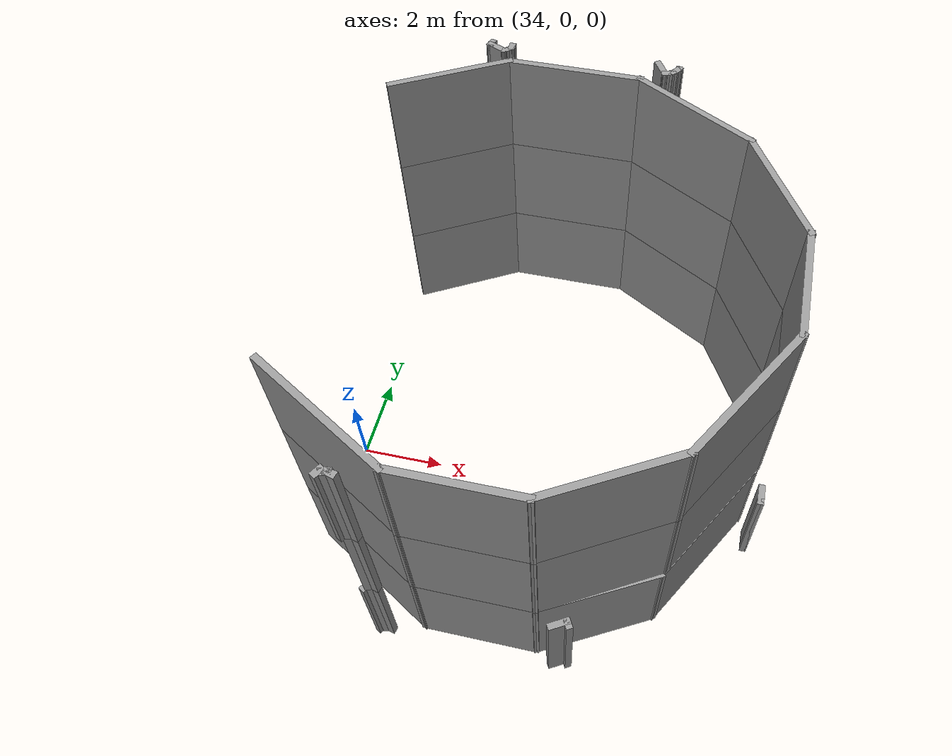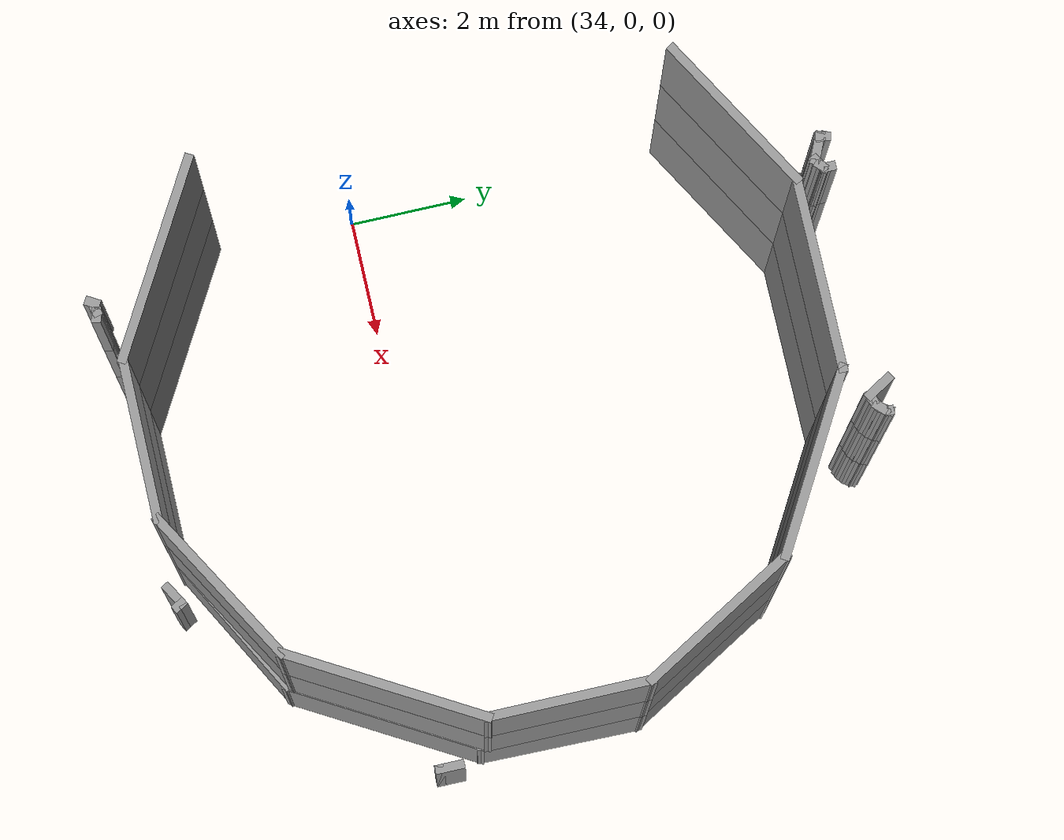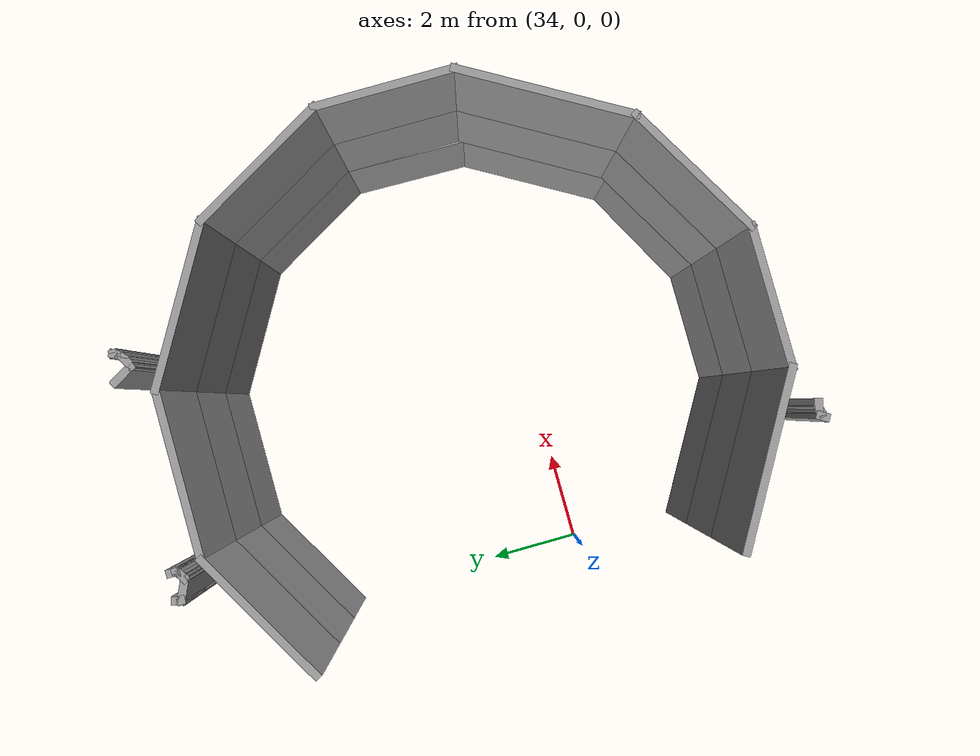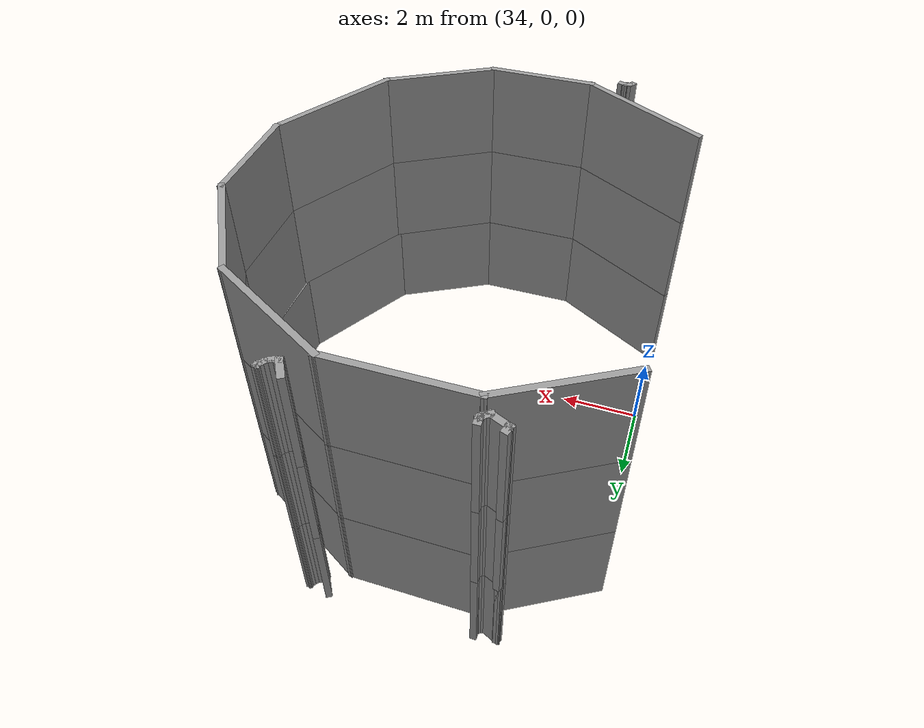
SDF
<sdf version="1.7">
 <model name="mapagazebo">
  <pose>-4.67869 9.01252 0 0 -0 0</pose>
  <link name="Wall_1289">
   <collision name="Wall_1289_Collision">
    <geometry><box><size>3.5 0.15 2.5</size></box></geometry>
    <pose>0 0 1.25 0 -0 0</pose>
   </collision>
   <visual name="Wall_1289_Visual">
    <pose>0 0 1.25 0 -0 0</pose>
    <geometry><box><size>3.5 0.15 2.5</size></box></geometry>
    <material>
     <script><uri>file://media/materials/scripts/gazebo.material</uri><name>Gazebo/Grey</name></script>
     <ambient>1 1 1 1</ambient>
    </material>
    <meta><layer>1</layer></meta>
   </visual>
   <pose>40.0905 -12.2721 2.5 0 -0 -0.523599</pose>
  </link>
  <link name="Wall_1290">
   <collision name="Wall_1290_Collision">
    <geometry><box><size>2.75 0.15 2.5</size></box></geometry>
    <pose>0 0 1.25 0 -0 0</pose>
   </collision>
   <visual name="Wall_1290_Visual">
    <pose>0 0 1.25 0 -0 0</pose>
    <geometry><box><size>2.75 0.15 2.5</size></box></geometry>
    <material>
     <script><uri>file://media/materials/scripts/gazebo.material</uri><name>Gazebo/Grey</name></script>
     <ambient>1 1 1 1</ambient>
    </material>
    <meta><layer>1</layer></meta>
   </visual>
   <pose>42.8411 -13.1096 2.5 0 -0 0</pose>
  </link>
  <link name="Wall_1291">
   <collision name="Wall_1291_Collision">
    <geometry><box><size>3 0.15 2.5</size></box></geometry>
    <pose>0 0 1.25 0 -0 0</pose>
   </collision>
   <visual name="Wall_1291_Visual">
    <pose>0 0 1.25 0 -0 0</pose>
    <geometry><box><size>3 0.15 2.5</size></box></geometry>
    <material>
     <script><uri>file://media/materials/scripts/gazebo.material</uri><name>Gazebo/Grey</name></script>
     <ambient>1 1 1 1</ambient>
    </material>
    <meta><layer>1</layer></meta>
   </visual>
   <pose>45.3752 -12.3971 2.5 0 -0 0.523599</pose>
  </link>
  <link name="Wall_1292">
   <collision name="Wall_1292_Collision">
    <geometry><box><size>3.5 0.15 2.5</size></box></geometry>
    <pose>0 0 1.25 0 -0 0</pose>
   </collision>
   <visual name="Wall_1292_Visual">
    <pose>0 0 1.25 0 -0 0</pose>
    <geometry><box><size>3.5 0.15 2.5</size></box></geometry>
    <material>
     <script><uri>file://media/materials/scripts/gazebo.material</uri><name>Gazebo/Grey</name></script>
     <ambient>1 1 1 1</ambient>
    </material>
    <meta><layer>1</layer></meta>
   </visual>
   <pose>47.4468 -10.234 2.5 0 -0 1.0472</pose>
  </link>
  <link name="Wall_1293">
   <collision name="Wall_1293_Collision">
    <geometry><box><size>2.75 0.15 2.5</size></box></geometry>
    <pose>0 0 1.25 0 -0 0</pose>
   </collision>
   <visual name="Wall_1293_Visual">
    <pose>0 0 1.25 0 -0 0</pose>
    <geometry><box><size>2.75 0.15 2.5</size></box></geometry>
    <material>
     <script><uri>file://media/materials/scripts/gazebo.material</uri><name>Gazebo/Grey</name></script>
     <ambient>1 1 1 1</ambient>
    </material>
    <meta><layer>1</layer></meta>
   </visual>
   <pose>48.2843 -7.48344 2.5 0 -0 1.5708</pose>
  </link>
  <link name="Wall_1294">
   <collision name="Wall_1294_Collision">
    <geometry><box><size>3 0.15 2.5</size></box></geometry>
    <pose>0 0 1.25 0 -0 0</pose>
   </collision>
   <visual name="Wall_1294_Visual">
    <pose>0 0 1.25 0 -0 0</pose>
    <geometry><box><size>3 0.15 2.5</size></box></geometry>
    <material>
     <script><uri>file://media/materials/scripts/gazebo.material</uri><name>Gazebo/Grey</name></script>
     <ambient>1 1 1 1</ambient>
    </material>
    <meta><layer>1</layer></meta>
   </visual>
   <pose>47.5718 -4.94936 2.5 0 -0 2.0944</pose>
  </link>
  <link name="Wall_1295">
   <collision name="Wall_1295_Collision">
    <geometry><box><size>3.25 0.15 2.5</size></box></geometry>
    <pose>0 0 1.25 0 -0 0</pose>
   </collision>
   <visual name="Wall_1295_Visual">
    <pose>0 0 1.25 0 -0 0</pose>
    <geometry><box><size>3.25 0.15 2.5</size></box></geometry>
    <material>
     <script><uri>file://media/materials/scripts/gazebo.material</uri><name>Gazebo/Grey</name></script>
     <ambient>1 1 1 1</ambient>
    </material>
    <meta><layer>1</layer></meta>
   </visual>
   <pose>45.517 -2.94027 2.5 0 -0 2.61799</pose>
  </link>
  <link name="Wall_1296">
   <collision name="Wall_1296_Collision">
    <geometry><box><size>3.25 0.15 2.5</size></box></geometry>
    <pose>0 0 1.25 0 -0 0</pose>
   </collision>
   <visual name="Wall_1296_Visual">
    <pose>0 0 1.25 0 -0 0</pose>
    <geometry><box><size>3.25 0.15 2.5</size></box></geometry>
    <material>
     <script><uri>file://media/materials/scripts/gazebo.material</uri><name>Gazebo/Grey</name></script>
     <ambient>1 1 1 1</ambient>
    </material>
    <meta><layer>1</layer></meta>
   </visual>
   <pose>42.6246 -2.16527 2.5 0 -0 3.14159</pose>
  </link>
  <link name="Wall_1297">
   <collision name="Wall_1297_Collision">
    <geometry><box><size>3 0.15 2.5</size></box></geometry>
    <pose>0 0 1.25 0 -0 0</pose>
   </collision>
   <visual name="Wall_1297_Visual">
    <pose>0 0 1.25 0 -0 0</pose>
    <geometry><box><size>3 0.15 2.5</size></box></geometry>
    <material>
     <script><uri>file://media/materials/scripts/gazebo.material</uri><name>Gazebo/Grey</name></script>
     <ambient>1 1 1 1</ambient>
    </material>
    <meta><layer>1</layer></meta>
   </visual>
   <pose>39.8405 -2.87777 2.5 0 -0 -2.61799</pose>
  </link>
  <link name="Wall_1300">
   <collision name="Wall_1300_Collision">
    <geometry><box><size>0.25 0.15 2.5</size></box></geometry>
    <pose>0 0 1.25 0 -0 0</pose>
   </collision>
   <visual name="Wall_1300_Visual">
    <pose>0 0 1.25 0 -0 0</pose>
    <geometry><box><size>0.25 0.15 2.5</size></box></geometry>
    <material>
     <script><uri>file://media/materials/scripts/gazebo.material</uri><name>Gazebo/Grey</name></script>
     <ambient>1 1 1 1</ambient>
    </material>
    <meta><layer>1</layer></meta>
   </visual>
   <pose>40.5029 -1.60448 2.5 0 -0 1.309</pose>
  </link>
  <link name="Wall_1312">
   <collision name="Wall_1312_Collision">
    <geometry><box><size>0.25 0.15 2.5</size></box></geometry>
    <pose>0 0 1.25 0 -0 0</pose>
   </collision>
   <visual name="Wall_1312_Visual">
    <pose>0 0 1.25 0 -0 0</pose>
    <geometry><box><size>0.25 0.15 2.5</size></box></geometry>
    <material>
     <script><uri>file://media/materials/scripts/gazebo.material</uri><name>Gazebo/Grey</name></script>
     <ambient>1 1 1 1</ambient>
    </material>
    <meta><layer>1</layer></meta>
   </visual>
   <pose>41.0039 -1.64102 2.5 0 -0 -1.5708</pose>
  </link>
  <link name="Wall_1313">
   <collision name="Wall_1313_Collision">
    <geometry><box><size>0.15 0.15 2.5</size></box></geometry>
    <pose>0 0 1.25 0 -0 0</pose>
   </collision>
   <visual name="Wall_1313_Visual">
    <pose>0 0 1.25 0 -0 0</pose>
    <geometry><box><size>0.15 0.15 2.5</size></box></geometry>
    <material>
     <script><uri>file://media/materials/scripts/gazebo.material</uri><name>Gazebo/Grey</name></script>
     <ambient>1 1 1 1</ambient>
    </material>
    <meta><layer>1</layer></meta>
   </visual>
   <pose>41.0039 -1.69102 2.5 0 -0 0</pose>
  </link>
  <link name="Wall_1314">
   <collision name="Wall_1314_Collision">
    <geometry><box><size>0.25 0.15 2.5</size></box></geometry>
    <pose>0 0 1.25 0 -0 0</pose>
   </collision>
   <visual name="Wall_1314_Visual">
    <pose>0 0 1.25 0 -0 0</pose>
    <geometry><box><size>0.25 0.15 2.5</size></box></geometry>
    <material>
     <script><uri>file://media/materials/scripts/gazebo.material</uri><name>Gazebo/Grey</name></script>
     <ambient>1 1 1 1</ambient>
    </material>
    <meta><layer>1</layer></meta>
   </visual>
   <pose>40.9686 -1.72638 2.5 0 -0 -2.35619</pose>
  </link>
  <link name="Wall_1315">
   <collision name="Wall_1315_Collision">
    <geometry><box><size>0.25 0.15 2.5</size></box></geometry>
    <pose>0 0 1.25 0 -0 0</pose>
   </collision>
   <visual name="Wall_1315_Visual">
    <pose>0 0 1.25 0 -0 0</pose>
    <geometry><box><size>0.25 0.15 2.5</size></box></geometry>
    <material>
     <script><uri>file://media/materials/scripts/gazebo.material</uri><name>Gazebo/Grey</name></script>
     <ambient>1 1 1 1</ambient>
    </material>
    <meta><layer>1</layer></meta>
   </visual>
   <pose>40.8899 -1.78673 2.5 0 -0 -2.61799</pose>
  </link>
  <link name="Wall_1316">
   <collision name="Wall_1316_Collision">
    <geometry><box><size>0.540518 0.15 2.5</size></box></geometry>
    <pose>0 0 1.25 0 -0 0</pose>
   </collision>
   <visual name="Wall_1316_Visual">
    <pose>0 0 1.25 0 -0 0</pose>
    <geometry><box><size>0.540518 0.15 2.5</size></box></geometry>
    <material>
     <script><uri>file://media/materials/scripts/gazebo.material</uri><name>Gazebo/Grey</name></script>
     <ambient>1 1 1 1</ambient>
    </material>
    <meta><layer>1</layer></meta>
   </visual>
   <pose>40.6683 -1.73226 2.5 0 -0 2.72238</pose>
  </link>
  <link name="Wall_1317">
   <collision name="Wall_1317_Collision">
    <geometry><box><size>0.16 0.15 2.5</size></box></geometry>
    <pose>0 0 1.25 0 -0 0</pose>
   </collision>
   <visual name="Wall_1317_Visual">
    <pose>0 0 1.25 0 -0 0</pose>
    <geometry><box><size>0.16 0.15 2.5</size></box></geometry>
    <material>
     <script><uri>file://media/materials/scripts/gazebo.material</uri><name>Gazebo/Grey</name></script>
     <ambient>1 1 1 1</ambient>
    </material>
    <meta><layer>1</layer></meta>
   </visual>
   <pose>40.4949 -1.65278 2.5 0 -0 0</pose>
  </link>
  <link name="Wall_1318">
   <collision name="Wall_1318_Collision">
    <geometry><box><size>0.16 0.15 2.5</size></box></geometry>
    <pose>0 0 1.25 0 -0 0</pose>
   </collision>
   <visual name="Wall_1318_Visual">
    <pose>0 0 1.25 0 -0 0</pose>
    <geometry><box><size>0.16 0.15 2.5</size></box></geometry>
    <material>
     <script><uri>file://media/materials/scripts/gazebo.material</uri><name>Gazebo/Grey</name></script>
     <ambient>1 1 1 1</ambient>
    </material>
    <meta><layer>1</layer></meta>
   </visual>
   <pose>40.5049 -1.65278 2.5 0 -0 0</pose>
  </link>
  <link name="Wall_1331">
   <collision name="Wall_1331_Collision">
    <geometry><box><size>0.15 0.15 2.5</size></box></geometry>
    <pose>0 0 1.25 0 -0 0</pose>
   </collision>
   <visual name="Wall_1331_Visual">
    <pose>0 0 1.25 0 -0 0</pose>
    <geometry><box><size>0.15 0.15 2.5</size></box></geometry>
    <material>
     <script><uri>file://media/materials/scripts/gazebo.material</uri><name>Gazebo/Grey</name></script>
     <ambient>1 1 1 1</ambient>
    </material>
    <meta><layer>1</layer></meta>
   </visual>
   <pose>44.9965 -1.61467 2.5 0 -0 0</pose>
  </link>
  <link name="Wall_1332">
   <collision name="Wall_1332_Collision">
    <geometry><box><size>0.25 0.15 2.5</size></box></geometry>
    <pose>0 0 1.25 0 -0 0</pose>
   </collision>
   <visual name="Wall_1332_Visual">
    <pose>0 0 1.25 0 -0 0</pose>
    <geometry><box><size>0.25 0.15 2.5</size></box></geometry>
    <material>
     <script><uri>file://media/materials/scripts/gazebo.material</uri><name>Gazebo/Grey</name></script>
     <ambient>1 1 1 1</ambient>
    </material>
    <meta><layer>1</layer></meta>
   </visual>
   <pose>44.9715 -1.65798 2.5 0 -0 -2.0944</pose>
  </link>
  <link name="Wall_1333">
   <collision name="Wall_1333_Collision">
    <geometry><box><size>0.25 0.15 2.5</size></box></geometry>
    <pose>0 0 1.25 0 -0 0</pose>
   </collision>
   <visual name="Wall_1333_Visual">
    <pose>0 0 1.25 0 -0 0</pose>
    <geometry><box><size>0.25 0.15 2.5</size></box></geometry>
    <material>
     <script><uri>file://media/materials/scripts/gazebo.material</uri><name>Gazebo/Grey</name></script>
     <ambient>1 1 1 1</ambient>
    </material>
    <meta><layer>1</layer></meta>
   </visual>
   <pose>44.9112 -1.73663 2.5 0 -0 -2.35619</pose>
  </link>
  <link name="Wall_1334">
   <collision name="Wall_1334_Collision">
    <geometry><box><size>0.25 0.15 2.5</size></box></geometry>
    <pose>0 0 1.25 0 -0 0</pose>
   </collision>
   <visual name="Wall_1334_Visual">
    <pose>0 0 1.25 0 -0 0</pose>
    <geometry><box><size>0.25 0.15 2.5</size></box></geometry>
    <material>
     <script><uri>file://media/materials/scripts/gazebo.material</uri><name>Gazebo/Grey</name></script>
     <ambient>1 1 1 1</ambient>
    </material>
    <meta><layer>1</layer></meta>
   </visual>
   <pose>44.8325 -1.79699 2.5 0 -0 -2.61799</pose>
  </link>
  <link name="Wall_1335">
   <collision name="Wall_1335_Collision">
    <geometry><box><size>0.25 0.15 2.5</size></box></geometry>
    <pose>0 0 1.25 0 -0 0</pose>
   </collision>
   <visual name="Wall_1335_Visual">
    <pose>0 0 1.25 0 -0 0</pose>
    <geometry><box><size>0.25 0.15 2.5</size></box></geometry>
    <material>
     <script><uri>file://media/materials/scripts/gazebo.material</uri><name>Gazebo/Grey</name></script>
     <ambient>1 1 1 1</ambient>
    </material>
    <meta><layer>1</layer></meta>
   </visual>
   <pose>44.7409 -1.83493 2.5 0 -0 -2.87979</pose>
  </link>
  <link name="Wall_1336">
   <collision name="Wall_1336_Collision">
    <geometry><box><size>0.534663 0.15 2.5</size></box></geometry>
    <pose>0 0 1.25 0 -0 0</pose>
   </collision>
   <visual name="Wall_1336_Visual">
    <pose>0 0 1.25 0 -0 0</pose>
    <geometry><box><size>0.534663 0.15 2.5</size></box></geometry>
    <material>
     <script><uri>file://media/materials/scripts/gazebo.material</uri><name>Gazebo/Grey</name></script>
     <ambient>1 1 1 1</ambient>
    </material>
    <meta><layer>1</layer></meta>
   </visual>
   <pose>44.5936 -1.68298 2.5 0 -0 2.11151</pose>
  </link>
  <link name="Wall_1382">
   <collision name="Wall_1382_Collision">
    <geometry><box><size>0.25 0.15 2.5</size></box></geometry>
    <pose>0 0 1.25 0 -0 0</pose>
   </collision>
   <visual name="Wall_1382_Visual">
    <pose>0 0 1.25 0 -0 0</pose>
    <geometry><box><size>0.25 0.15 2.5</size></box></geometry>
    <material>
     <script><uri>file://media/materials/scripts/gazebo.material</uri><name>Gazebo/Grey</name></script>
     <ambient>1 1 1 1</ambient>
    </material>
    <meta><layer>1</layer></meta>
   </visual>
   <pose>40.6735 -13.3644 2.5 0 -0 0.261799</pose>
  </link>
  <link name="Wall_1383">
   <collision name="Wall_1383_Collision">
    <geometry><box><size>0.15 0.15 2.5</size></box></geometry>
    <pose>0 0 1.25 0 -0 0</pose>
   </collision>
   <visual name="Wall_1383_Visual">
    <pose>0 0 1.25 0 -0 0</pose>
    <geometry><box><size>0.15 0.15 2.5</size></box></geometry>
    <material>
     <script><uri>file://media/materials/scripts/gazebo.material</uri><name>Gazebo/Grey</name></script>
     <ambient>1 1 1 1</ambient>
    </material>
    <meta><layer>1</layer></meta>
   </visual>
   <pose>40.7218 -13.3514 2.5 0 -0 0</pose>
  </link>
  <link name="Wall_1384">
   <collision name="Wall_1384_Collision">
    <geometry><box><size>0.25 0.15 2.5</size></box></geometry>
    <pose>0 0 1.25 0 -0 0</pose>
   </collision>
   <visual name="Wall_1384_Visual">
    <pose>0 0 1.25 0 -0 0</pose>
    <geometry><box><size>0.25 0.15 2.5</size></box></geometry>
    <material>
     <script><uri>file://media/materials/scripts/gazebo.material</uri><name>Gazebo/Grey</name></script>
     <ambient>1 1 1 1</ambient>
    </material>
    <meta><layer>1</layer></meta>
   </visual>
   <pose>40.7701 -13.3644 2.5 0 -0 -0.261799</pose>
  </link>
  <link name="Wall_1913">
   <collision name="Wall_1913_Collision">
    <geometry><box><size>3.5 0.15 2.5</size></box></geometry>
    <pose>0 0 1.25 0 -0 0</pose>
   </collision>
   <visual name="Wall_1913_Visual">
    <pose>0 0 1.25 0 -0 0</pose>
    <geometry><box><size>3.5 0.15 2.5</size></box></geometry>
    <material>
     <script><uri>file://media/materials/scripts/gazebo.material</uri><name>Gazebo/Grey</name></script>
     <ambient>1 1 1 1</ambient>
    </material>
    <meta><layer>2</layer></meta>
   </visual>
   <pose>40.0905 -12.2721 5 0 -0 -0.523599</pose>
  </link>
  <link name="Wall_1914">
   <collision name="Wall_1914_Collision">
    <geometry><box><size>2.75 0.15 2.5</size></box></geometry>
    <pose>0 0 1.25 0 -0 0</pose>
   </collision>
   <visual name="Wall_1914_Visual">
    <pose>0 0 1.25 0 -0 0</pose>
    <geometry><box><size>2.75 0.15 2.5</size></box></geometry>
    <material>
     <script><uri>file://media/materials/scripts/gazebo.material</uri><name>Gazebo/Grey</name></script>
     <ambient>1 1 1 1</ambient>
    </material>
    <meta><layer>2</layer></meta>
   </visual>
   <pose>42.8411 -13.1096 5 0 -0 0</pose>
  </link>
  <link name="Wall_1915">
   <collision name="Wall_1915_Collision">
    <geometry><box><size>3 0.15 2.5</size></box></geometry>
    <pose>0 0 1.25 0 -0 0</pose>
   </collision>
   <visual name="Wall_1915_Visual">
    <pose>0 0 1.25 0 -0 0</pose>
    <geometry><box><size>3 0.15 2.5</size></box></geometry>
    <material>
     <script><uri>file://media/materials/scripts/gazebo.material</uri><name>Gazebo/Grey</name></script>
     <ambient>1 1 1 1</ambient>
    </material>
    <meta><layer>2</layer></meta>
   </visual>
   <pose>45.3752 -12.3971 5 0 -0 0.523599</pose>
  </link>
  <link name="Wall_1916">
   <collision name="Wall_1916_Collision">
    <geometry><box><size>3.5 0.15 2.5</size></box></geometry>
    <pose>0 0 1.25 0 -0 0</pose>
   </collision>
   <visual name="Wall_1916_Visual">
    <pose>0 0 1.25 0 -0 0</pose>
    <geometry><box><size>3.5 0.15 2.5</size></box></geometry>
    <material>
     <script><uri>file://media/materials/scripts/gazebo.material</uri><name>Gazebo/Grey</name></script>
     <ambient>1 1 1 1</ambient>
    </material>
    <meta><layer>2</layer></meta>
   </visual>
   <pose>47.4468 -10.234 5 0 -0 1.0472</pose>
  </link>
  <link name="Wall_1917">
   <collision name="Wall_1917_Collision">
    <geometry><box><size>2.75 0.15 2.5</size></box></geometry>
    <pose>0 0 1.25 0 -0 0</pose>
   </collision>
   <visual name="Wall_1917_Visual">
    <pose>0 0 1.25 0 -0 0</pose>
    <geometry><box><size>2.75 0.15 2.5</size></box></geometry>
    <material>
     <script><uri>file://media/materials/scripts/gazebo.material</uri><name>Gazebo/Grey</name></script>
     <ambient>1 1 1 1</ambient>
    </material>
    <meta><layer>2</layer></meta>
   </visual>
   <pose>48.2843 -7.48344 5 0 -0 1.5708</pose>
  </link>
  <link name="Wall_1918">
   <collision name="Wall_1918_Collision">
    <geometry><box><size>3 0.15 2.5</size></box></geometry>
    <pose>0 0 1.25 0 -0 0</pose>
   </collision>
   <visual name="Wall_1918_Visual">
    <pose>0 0 1.25 0 -0 0</pose>
    <geometry><box><size>3 0.15 2.5</size></box></geometry>
    <material>
     <script><uri>file://media/materials/scripts/gazebo.material</uri><name>Gazebo/Grey</name></script>
     <ambient>1 1 1 1</ambient>
    </material>
    <meta><layer>2</layer></meta>
   </visual>
   <pose>47.5718 -4.94936 5 0 -0 2.0944</pose>
  </link>
  <link name="Wall_1919">
   <collision name="Wall_1919_Collision">
    <geometry><box><size>3.25 0.15 2.5</size></box></geometry>
    <pose>0 0 1.25 0 -0 0</pose>
   </collision>
   <visual name="Wall_1919_Visual">
    <pose>0 0 1.25 0 -0 0</pose>
    <geometry><box><size>3.25 0.15 2.5</size></box></geometry>
    <material>
     <script><uri>file://media/materials/scripts/gazebo.material</uri><name>Gazebo/Grey</name></script>
     <ambient>1 1 1 1</ambient>
    </material>
    <meta><layer>2</layer></meta>
   </visual>
   <pose>45.517 -2.94027 5 0 -0 2.61799</pose>
  </link>
  <link name="Wall_1920">
   <collision name="Wall_1920_Collision">
    <geometry><box><size>3.25 0.15 2.5</size></box></geometry>
    <pose>0 0 1.25 0 -0 0</pose>
   </collision>
   <visual name="Wall_1920_Visual">
    <pose>0 0 1.25 0 -0 0</pose>
    <geometry><box><size>3.25 0.15 2.5</size></box></geometry>
    <material>
     <script><uri>file://media/materials/scripts/gazebo.material</uri><name>Gazebo/Grey</name></script>
     <ambient>1 1 1 1</ambient>
    </material>
    <meta><layer>2</layer></meta>
   </visual>
   <pose>42.6246 -2.16527 5 0 -0 3.14159</pose>
  </link>
  <link name="Wall_1921">
   <collision name="Wall_1921_Collision">
    <geometry><box><size>3 0.15 2.5</size></box></geometry>
    <pose>0 0 1.25 0 -0 0</pose>
   </collision>
   <visual name="Wall_1921_Visual">
    <pose>0 0 1.25 0 -0 0</pose>
    <geometry><box><size>3 0.15 2.5</size></box></geometry>
    <material>
     <script><uri>file://media/materials/scripts/gazebo.material</uri><name>Gazebo/Grey</name></script>
     <ambient>1 1 1 1</ambient>
    </material>
    <meta><layer>2</layer></meta>
   </visual>
   <pose>39.8405 -2.87777 5 0 -0 -2.61799</pose>
  </link>
  <link name="Wall_1924">
   <collision name="Wall_1924_Collision">
    <geometry><box><size>0.25 0.15 2.5</size></box></geometry>
    <pose>0 0 1.25 0 -0 0</pose>
   </collision>
   <visual name="Wall_1924_Visual">
    <pose>0 0 1.25 0 -0 0</pose>
    <geometry><box><size>0.25 0.15 2.5</size></box></geometry>
    <material>
     <script><uri>file://media/materials/scripts/gazebo.material</uri><name>Gazebo/Grey</name></script>
     <ambient>1 1 1 1</ambient>
    </material>
    <meta><layer>2</layer></meta>
   </visual>
   <pose>40.5029 -1.60448 5 0 -0 1.309</pose>
  </link>
  <link name="Wall_1936">
   <collision name="Wall_1936_Collision">
    <geometry><box><size>0.25 0.15 2.5</size></box></geometry>
    <pose>0 0 1.25 0 -0 0</pose>
   </collision>
   <visual name="Wall_1936_Visual">
    <pose>0 0 1.25 0 -0 0</pose>
    <geometry><box><size>0.25 0.15 2.5</size></box></geometry>
    <material>
     <script><uri>file://media/materials/scripts/gazebo.material</uri><name>Gazebo/Grey</name></script>
     <ambient>1 1 1 1</ambient>
    </material>
    <meta><layer>2</layer></meta>
   </visual>
   <pose>41.0039 -1.64102 5 0 -0 -1.5708</pose>
  </link>
  <link name="Wall_1937">
   <collision name="Wall_1937_Collision">
    <geometry><box><size>0.15 0.15 2.5</size></box></geometry>
    <pose>0 0 1.25 0 -0 0</pose>
   </collision>
   <visual name="Wall_1937_Visual">
    <pose>0 0 1.25 0 -0 0</pose>
    <geometry><box><size>0.15 0.15 2.5</size></box></geometry>
    <material>
     <script><uri>file://media/materials/scripts/gazebo.material</uri><name>Gazebo/Grey</name></script>
     <ambient>1 1 1 1</ambient>
    </material>
    <meta><layer>2</layer></meta>
   </visual>
   <pose>41.0039 -1.69102 5 0 -0 0</pose>
  </link>
  <link name="Wall_1938">
   <collision name="Wall_1938_Collision">
    <geometry><box><size>0.25 0.15 2.5</size></box></geometry>
    <pose>0 0 1.25 0 -0 0</pose>
   </collision>
   <visual name="Wall_1938_Visual">
    <pose>0 0 1.25 0 -0 0</pose>
    <geometry><box><size>0.25 0.15 2.5</size></box></geometry>
    <material>
     <script><uri>file://media/materials/scripts/gazebo.material</uri><name>Gazebo/Grey</name></script>
     <ambient>1 1 1 1</ambient>
    </material>
    <meta><layer>2</layer></meta>
   </visual>
   <pose>40.9686 -1.72638 5 0 -0 -2.35619</pose>
  </link>
  <link name="Wall_1939">
   <collision name="Wall_1939_Collision">
    <geometry><box><size>0.25 0.15 2.5</size></box></geometry>
    <pose>0 0 1.25 0 -0 0</pose>
   </collision>
   <visual name="Wall_1939_Visual">
    <pose>0 0 1.25 0 -0 0</pose>
    <geometry><box><size>0.25 0.15 2.5</size></box></geometry>
    <material>
     <script><uri>file://media/materials/scripts/gazebo.material</uri><name>Gazebo/Grey</name></script>
     <ambient>1 1 1 1</ambient>
    </material>
    <meta><layer>2</layer></meta>
   </visual>
   <pose>40.8899 -1.78673 5 0 -0 -2.61799</pose>
  </link>
  <link name="Wall_1940">
   <collision name="Wall_1940_Collision">
    <geometry><box><size>0.540518 0.15 2.5</size></box></geometry>
    <pose>0 0 1.25 0 -0 0</pose>
   </collision>
   <visual name="Wall_1940_Visual">
    <pose>0 0 1.25 0 -0 0</pose>
    <geometry><box><size>0.540518 0.15 2.5</size></box></geometry>
    <material>
     <script><uri>file://media/materials/scripts/gazebo.material</uri><name>Gazebo/Grey</name></script>
     <ambient>1 1 1 1</ambient>
    </material>
    <meta><layer>2</layer></meta>
   </visual>
   <pose>40.6683 -1.73226 5 0 -0 2.72238</pose>
  </link>
  <link name="Wall_1941">
   <collision name="Wall_1941_Collision">
    <geometry><box><size>0.16 0.15 2.5</size></box></geometry>
    <pose>0 0 1.25 0 -0 0</pose>
   </collision>
   <visual name="Wall_1941_Visual">
    <pose>0 0 1.25 0 -0 0</pose>
    <geometry><box><size>0.16 0.15 2.5</size></box></geometry>
    <material>
     <script><uri>file://media/materials/scripts/gazebo.material</uri><name>Gazebo/Grey</name></script>
     <ambient>1 1 1 1</ambient>
    </material>
    <meta><layer>2</layer></meta>
   </visual>
   <pose>40.4949 -1.65278 5 0 -0 0</pose>
  </link>
  <link name="Wall_1942">
   <collision name="Wall_1942_Collision">
    <geometry><box><size>0.16 0.15 2.5</size></box></geometry>
    <pose>0 0 1.25 0 -0 0</pose>
   </collision>
   <visual name="Wall_1942_Visual">
    <pose>0 0 1.25 0 -0 0</pose>
    <geometry><box><size>0.16 0.15 2.5</size></box></geometry>
    <material>
     <script><uri>file://media/materials/scripts/gazebo.material</uri><name>Gazebo/Grey</name></script>
     <ambient>1 1 1 1</ambient>
    </material>
    <meta><layer>2</layer></meta>
   </visual>
   <pose>40.5049 -1.65278 5 0 -0 0</pose>
  </link>
  <link name="Wall_1955">
   <collision name="Wall_1955_Collision">
    <geometry><box><size>0.15 0.15 2.5</size></box></geometry>
    <pose>0 0 1.25 0 -0 0</pose>
   </collision>
   <visual name="Wall_1955_Visual">
    <pose>0 0 1.25 0 -0 0</pose>
    <geometry><box><size>0.15 0.15 2.5</size></box></geometry>
    <material>
     <script><uri>file://media/materials/scripts/gazebo.material</uri><name>Gazebo/Grey</name></script>
     <ambient>1 1 1 1</ambient>
    </material>
    <meta><layer>2</layer></meta>
   </visual>
   <pose>44.9965 -1.61467 5 0 -0 0</pose>
  </link>
  <link name="Wall_1956">
   <collision name="Wall_1956_Collision">
    <geometry><box><size>0.25 0.15 2.5</size></box></geometry>
    <pose>0 0 1.25 0 -0 0</pose>
   </collision>
   <visual name="Wall_1956_Visual">
    <pose>0 0 1.25 0 -0 0</pose>
    <geometry><box><size>0.25 0.15 2.5</size></box></geometry>
    <material>
     <script><uri>file://media/materials/scripts/gazebo.material</uri><name>Gazebo/Grey</name></script>
     <ambient>1 1 1 1</ambient>
    </material>
    <meta><layer>2</layer></meta>
   </visual>
   <pose>44.9715 -1.65798 5 0 -0 -2.0944</pose>
  </link>
  <link name="Wall_1957">
   <collision name="Wall_1957_Collision">
    <geometry><box><size>0.25 0.15 2.5</size></box></geometry>
    <pose>0 0 1.25 0 -0 0</pose>
   </collision>
   <visual name="Wall_1957_Visual">
    <pose>0 0 1.25 0 -0 0</pose>
    <geometry><box><size>0.25 0.15 2.5</size></box></geometry>
    <material>
     <script><uri>file://media/materials/scripts/gazebo.material</uri><name>Gazebo/Grey</name></script>
     <ambient>1 1 1 1</ambient>
    </material>
    <meta><layer>2</layer></meta>
   </visual>
   <pose>44.9112 -1.73663 5 0 -0 -2.35619</pose>
  </link>
  <link name="Wall_1958">
   <collision name="Wall_1958_Collision">
    <geometry><box><size>0.25 0.15 2.5</size></box></geometry>
    <pose>0 0 1.25 0 -0 0</pose>
   </collision>
   <visual name="Wall_1958_Visual">
    <pose>0 0 1.25 0 -0 0</pose>
    <geometry><box><size>0.25 0.15 2.5</size></box></geometry>
    <material>
     <script><uri>file://media/materials/scripts/gazebo.material</uri><name>Gazebo/Grey</name></script>
     <ambient>1 1 1 1</ambient>
    </material>
    <meta><layer>2</layer></meta>
   </visual>
   <pose>44.8325 -1.79699 5 0 -0 -2.61799</pose>
  </link>
  <link name="Wall_1959">
   <collision name="Wall_1959_Collision">
    <geometry><box><size>0.25 0.15 2.5</size></box></geometry>
    <pose>0 0 1.25 0 -0 0</pose>
   </collision>
   <visual name="Wall_1959_Visual">
    <pose>0 0 1.25 0 -0 0</pose>
    <geometry><box><size>0.25 0.15 2.5</size></box></geometry>
    <material>
     <script><uri>file://media/materials/scripts/gazebo.material</uri><name>Gazebo/Grey</name></script>
     <ambient>1 1 1 1</ambient>
    </material>
    <meta><layer>2</layer></meta>
   </visual>
   <pose>44.7409 -1.83493 5 0 -0 -2.87979</pose>
  </link>
  <link name="Wall_1960">
   <collision name="Wall_1960_Collision">
    <geometry><box><size>0.534663 0.15 2.5</size></box></geometry>
    <pose>0 0 1.25 0 -0 0</pose>
   </collision>
   <visual name="Wall_1960_Visual">
    <pose>0 0 1.25 0 -0 0</pose>
    <geometry><box><size>0.534663 0.15 2.5</size></box></geometry>
    <material>
     <script><uri>file://media/materials/scripts/gazebo.material</uri><name>Gazebo/Grey</name></script>
     <ambient>1 1 1 1</ambient>
    </material>
    <meta><layer>2</layer></meta>
   </visual>
   <pose>44.5936 -1.68298 5 0 -0 2.11151</pose>
  </link>
  <link name="Wall_2004">
   <collision name="Wall_2004_Collision">
    <geometry><box><size>0.25 0.15 2.5</size></box></geometry>
    <pose>0 0 1.25 0 -0 0</pose>
   </collision>
   <visual name="Wall_2004_Visual">
    <pose>0 0 1.25 0 -0 0</pose>
    <geometry><box><size>0.25 0.15 2.5</size></box></geometry>
    <material>
     <script><uri>file://media/materials/scripts/gazebo.material</uri><name>Gazebo/Grey</name></script>
     <ambient>1 1 1 1</ambient>
    </material>
    <meta><layer>2</layer></meta>
   </visual>
   <pose>40.5636 -13.384 5 0 -0 1.0472</pose>
  </link>
  <link name="Wall_2006">
   <collision name="Wall_2006_Collision">
    <geometry><box><size>0.25 0.15 2.5</size></box></geometry>
    <pose>0 0 1.25 0 -0 0</pose>
   </collision>
   <visual name="Wall_2006_Visual">
    <pose>0 0 1.25 0 -0 0</pose>
    <geometry><box><size>0.25 0.15 2.5</size></box></geometry>
    <material>
     <script><uri>file://media/materials/scripts/gazebo.material</uri><name>Gazebo/Grey</name></script>
     <ambient>1 1 1 1</ambient>
    </material>
    <meta><layer>2</layer></meta>
   </visual>
   <pose>40.6735 -13.3644 5 0 -0 0.261799</pose>
  </link>
  <link name="Wall_2007">
   <collision name="Wall_2007_Collision">
    <geometry><box><size>0.15 0.15 2.5</size></box></geometry>
    <pose>0 0 1.25 0 -0 0</pose>
   </collision>
   <visual name="Wall_2007_Visual">
    <pose>0 0 1.25 0 -0 0</pose>
    <geometry><box><size>0.15 0.15 2.5</size></box></geometry>
    <material>
     <script><uri>file://media/materials/scripts/gazebo.material</uri><name>Gazebo/Grey</name></script>
     <ambient>1 1 1 1</ambient>
    </material>
    <meta><layer>2</layer></meta>
   </visual>
   <pose>40.7218 -13.3514 5 0 -0 0</pose>
  </link>
  <link name="Wall_2008">
   <collision name="Wall_2008_Collision">
    <geometry><box><size>0.25 0.15 2.5</size></box></geometry>
    <pose>0 0 1.25 0 -0 0</pose>
   </collision>
   <visual name="Wall_2008_Visual">
    <pose>0 0 1.25 0 -0 0</pose>
    <geometry><box><size>0.25 0.15 2.5</size></box></geometry>
    <material>
     <script><uri>file://media/materials/scripts/gazebo.material</uri><name>Gazebo/Grey</name></script>
     <ambient>1 1 1 1</ambient>
    </material>
    <meta><layer>2</layer></meta>
   </visual>
   <pose>40.7701 -13.3644 5 0 -0 -0.261799</pose>
  </link>
  <link name="Wall_2021">
   <collision name="Wall_2021_Collision">
    <geometry><box><size>0.5 0.15 2.5</size></box></geometry>
    <pose>0 0 1.25 0 -0 0</pose>
   </collision>
   <visual name="Wall_2021_Visual">
    <pose>0 0 1.25 0 -0 0</pose>
    <geometry><box><size>0.5 0.15 2.5</size></box></geometry>
    <material>
     <script><uri>file://media/materials/scripts/gazebo.material</uri><name>Gazebo/Grey</name></script>
     <ambient>1 1 1 1</ambient>
    </material>
    <meta><layer>0</layer></meta>
   </visual>
   <pose>44.6829 -13.2968 0 0 -0 0.523599</pose>
  </link>
  <link name="Wall_2022">
   <collision name="Wall_2022_Collision">
    <geometry><box><size>0.25 0.15 2.5</size></box></geometry>
    <pose>0 0 1.25 0 -0 0</pose>
   </collision>
   <visual name="Wall_2022_Visual">
    <pose>0 0 1.25 0 -0 0</pose>
    <geometry><box><size>0.25 0.15 2.5</size></box></geometry>
    <material>
     <script><uri>file://media/materials/scripts/gazebo.material</uri><name>Gazebo/Grey</name></script>
     <ambient>1 1 1 1</ambient>
    </material>
    <meta><layer>0</layer></meta>
   </visual>
   <pose>44.8594 -13.2526 0 0 -0 -1.0472</pose>
  </link>
  <link name="Wall_2030">
   <collision name="Wall_2030_Collision">
    <geometry><box><size>0.5 0.15 2.5</size></box></geometry>
    <pose>0 0 1.25 0 -0 0</pose>
   </collision>
   <visual name="Wall_2030_Visual">
    <pose>0 0 1.25 0 -0 0</pose>
    <geometry><box><size>0.5 0.15 2.5</size></box></geometry>
    <material>
     <script><uri>file://media/materials/scripts/gazebo.material</uri><name>Gazebo/Grey</name></script>
     <ambient>1 1 1 1</ambient>
    </material>
    <meta><layer>0</layer></meta>
   </visual>
   <pose>48.4705 -9.47094 0 0 -0 1.5708</pose>
  </link>
  <link name="Wall_2036">
   <collision name="Wall_2036_Collision">
    <geometry><box><size>0.15 0.15 2.5</size></box></geometry>
    <pose>0 0 1.25 0 -0 0</pose>
   </collision>
   <visual name="Wall_2036_Visual">
    <pose>0 0 1.25 0 -0 0</pose>
    <geometry><box><size>0.15 0.15 2.5</size></box></geometry>
    <material>
     <script><uri>file://media/materials/scripts/gazebo.material</uri><name>Gazebo/Grey</name></script>
     <ambient>1 1 1 1</ambient>
    </material>
    <meta><layer>0</layer></meta>
   </visual>
   <pose>48.4705 -9.64594 0 0 -0 0</pose>
  </link>
  <link name="Wall_651">
   <collision name="Wall_651_Collision">
    <geometry><box><size>3.5 0.15 2.5</size></box></geometry>
    <pose>0 0 1.25 0 -0 0</pose>
   </collision>
   <visual name="Wall_651_Visual">
    <pose>0 0 1.25 0 -0 0</pose>
    <geometry><box><size>3.5 0.15 2.5</size></box></geometry>
    <material>
     <script><uri>file://media/materials/scripts/gazebo.material</uri><name>Gazebo/Grey</name></script>
     <ambient>1 1 1 1</ambient>
    </material>
    <meta><layer>0</layer></meta>
   </visual>
   <pose>40.0905 -12.2721 0 0 -0 -0.523599</pose>
  </link>
  <link name="Wall_652">
   <collision name="Wall_652_Collision">
    <geometry><box><size>2.75 0.15 2.5</size></box></geometry>
    <pose>0 0 1.25 0 -0 0</pose>
   </collision>
   <visual name="Wall_652_Visual">
    <pose>0 0 1.25 0 -0 0</pose>
    <geometry><box><size>2.75 0.15 2.5</size></box></geometry>
    <material>
     <script><uri>file://media/materials/scripts/gazebo.material</uri><name>Gazebo/Grey</name></script>
     <ambient>1 1 1 1</ambient>
    </material>
    <meta><layer>0</layer></meta>
   </visual>
   <pose>42.8411 -13.1096 0 0 -0 0</pose>
  </link>
  <link name="Wall_653">
   <collision name="Wall_653_Collision">
    <geometry><box><size>2.90828 0.15 2.5</size></box></geometry>
    <pose>0 0 1.25 0 -0 0</pose>
   </collision>
   <visual name="Wall_653_Visual">
    <pose>0 0 1.25 0 -0 0</pose>
    <geometry><box><size>2.90828 0.15 2.5</size></box></geometry>
    <material>
     <script><uri>file://media/materials/scripts/gazebo.material</uri><name>Gazebo/Grey</name></script>
     <ambient>1 1 1 1</ambient>
    </material>
    <meta><layer>0</layer></meta>
   </visual>
   <pose>45.3533 -12.4519 0 0 -0 0.497153</pose>
  </link>
  <link name="Wall_654">
   <collision name="Wall_654_Collision">
    <geometry><box><size>3.5 0.15 2.5</size></box></geometry>
    <pose>0 0 1.25 0 -0 0</pose>
   </collision>
   <visual name="Wall_654_Visual">
    <pose>0 0 1.25 0 -0 0</pose>
    <geometry><box><size>3.5 0.15 2.5</size></box></geometry>
    <material>
     <script><uri>file://media/materials/scripts/gazebo.material</uri><name>Gazebo/Grey</name></script>
     <ambient>1 1 1 1</ambient>
    </material>
    <meta><layer>0</layer></meta>
   </visual>
   <pose>47.403 -10.3435 0 0 -0 1.0472</pose>
  </link>
  <link name="Wall_655">
   <collision name="Wall_655_Collision">
    <geometry><box><size>2.8596 0.15 2.5</size></box></geometry>
    <pose>0 0 1.25 0 -0 0</pose>
   </collision>
   <visual name="Wall_655_Visual">
    <pose>0 0 1.25 0 -0 0</pose>
    <geometry><box><size>2.8596 0.15 2.5</size></box></geometry>
    <material>
     <script><uri>file://media/materials/scripts/gazebo.material</uri><name>Gazebo/Grey</name></script>
     <ambient>1 1 1 1</ambient>
    </material>
    <meta><layer>0</layer></meta>
   </visual>
   <pose>48.2624 -7.5382 0 0 -0 1.55463</pose>
  </link>
  <link name="Wall_656">
   <collision name="Wall_656_Collision">
    <geometry><box><size>3 0.15 2.5</size></box></geometry>
    <pose>0 0 1.25 0 -0 0</pose>
   </collision>
   <visual name="Wall_656_Visual">
    <pose>0 0 1.25 0 -0 0</pose>
    <geometry><box><size>3 0.15 2.5</size></box></geometry>
    <material>
     <script><uri>file://media/materials/scripts/gazebo.material</uri><name>Gazebo/Grey</name></script>
     <ambient>1 1 1 1</ambient>
    </material>
    <meta><layer>0</layer></meta>
   </visual>
   <pose>47.5718 -4.94936 0 0 -0 2.0944</pose>
  </link>
  <link name="Wall_657">
   <collision name="Wall_657_Collision">
    <geometry><box><size>3.25 0.15 2.5</size></box></geometry>
    <pose>0 0 1.25 0 -0 0</pose>
   </collision>
   <visual name="Wall_657_Visual">
    <pose>0 0 1.25 0 -0 0</pose>
    <geometry><box><size>3.25 0.15 2.5</size></box></geometry>
    <material>
     <script><uri>file://media/materials/scripts/gazebo.material</uri><name>Gazebo/Grey</name></script>
     <ambient>1 1 1 1</ambient>
    </material>
    <meta><layer>0</layer></meta>
   </visual>
   <pose>45.517 -2.94027 0 0 -0 2.61799</pose>
  </link>
  <link name="Wall_658">
   <collision name="Wall_658_Collision">
    <geometry><box><size>3.25 0.15 2.5</size></box></geometry>
    <pose>0 0 1.25 0 -0 0</pose>
   </collision>
   <visual name="Wall_658_Visual">
    <pose>0 0 1.25 0 -0 0</pose>
    <geometry><box><size>3.25 0.15 2.5</size></box></geometry>
    <material>
     <script><uri>file://media/materials/scripts/gazebo.material</uri><name>Gazebo/Grey</name></script>
     <ambient>1 1 1 1</ambient>
    </material>
    <meta><layer>0</layer></meta>
   </visual>
   <pose>42.6246 -2.16527 0 0 -0 3.14159</pose>
  </link>
  <link name="Wall_659">
   <collision name="Wall_659_Collision">
    <geometry><box><size>3 0.15 2.5</size></box></geometry>
    <pose>0 0 1.25 0 -0 0</pose>
   </collision>
   <visual name="Wall_659_Visual">
    <pose>0 0 1.25 0 -0 0</pose>
    <geometry><box><size>3 0.15 2.5</size></box></geometry>
    <material>
     <script><uri>file://media/materials/scripts/gazebo.material</uri><name>Gazebo/Grey</name></script>
     <ambient>1 1 1 1</ambient>
    </material>
    <meta><layer>0</layer></meta>
   </visual>
   <pose>39.8405 -2.87777 0 0 -0 -2.61799</pose>
  </link>
  <link name="Wall_678">
   <collision name="Wall_678_Collision">
    <geometry><box><size>0.25 0.15 2.5</size></box></geometry>
    <pose>0 0 1.25 0 -0 0</pose>
   </collision>
   <visual name="Wall_678_Visual">
    <pose>0 0 1.25 0 -0 0</pose>
    <geometry><box><size>0.25 0.15 2.5</size></box></geometry>
    <material>
     <script><uri>file://media/materials/scripts/gazebo.material</uri><name>Gazebo/Grey</name></script>
     <ambient>1 1 1 1</ambient>
    </material>
    <meta><layer>0</layer></meta>
   </visual>
   <pose>41.0039 -1.64102 0 0 -0 -1.5708</pose>
  </link>
  <link name="Wall_679">
   <collision name="Wall_679_Collision">
    <geometry><box><size>0.15 0.15 2.5</size></box></geometry>
    <pose>0 0 1.25 0 -0 0</pose>
   </collision>
   <visual name="Wall_679_Visual">
    <pose>0 0 1.25 0 -0 0</pose>
    <geometry><box><size>0.15 0.15 2.5</size></box></geometry>
    <material>
     <script><uri>file://media/materials/scripts/gazebo.material</uri><name>Gazebo/Grey</name></script>
     <ambient>1 1 1 1</ambient>
    </material>
    <meta><layer>0</layer></meta>
   </visual>
   <pose>41.0039 -1.69102 0 0 -0 0</pose>
  </link>
  <link name="Wall_680">
   <collision name="Wall_680_Collision">
    <geometry><box><size>0.25 0.15 2.5</size></box></geometry>
    <pose>0 0 1.25 0 -0 0</pose>
   </collision>
   <visual name="Wall_680_Visual">
    <pose>0 0 1.25 0 -0 0</pose>
    <geometry><box><size>0.25 0.15 2.5</size></box></geometry>
    <material>
     <script><uri>file://media/materials/scripts/gazebo.material</uri><name>Gazebo/Grey</name></script>
     <ambient>1 1 1 1</ambient>
    </material>
    <meta><layer>0</layer></meta>
   </visual>
   <pose>40.9686 -1.72638 0 0 -0 -2.35619</pose>
  </link>
  <link name="Wall_681">
   <collision name="Wall_681_Collision">
    <geometry><box><size>0.25 0.15 2.5</size></box></geometry>
    <pose>0 0 1.25 0 -0 0</pose>
   </collision>
   <visual name="Wall_681_Visual">
    <pose>0 0 1.25 0 -0 0</pose>
    <geometry><box><size>0.25 0.15 2.5</size></box></geometry>
    <material>
     <script><uri>file://media/materials/scripts/gazebo.material</uri><name>Gazebo/Grey</name></script>
     <ambient>1 1 1 1</ambient>
    </material>
    <meta><layer>0</layer></meta>
   </visual>
   <pose>40.8899 -1.78673 0 0 -0 -2.61799</pose>
  </link>
  <link name="Wall_682">
   <collision name="Wall_682_Collision">
    <geometry><box><size>0.540518 0.15 2.5</size></box></geometry>
    <pose>0 0 1.25 0 -0 0</pose>
   </collision>
   <visual name="Wall_682_Visual">
    <pose>0 0 1.25 0 -0 0</pose>
    <geometry><box><size>0.540518 0.15 2.5</size></box></geometry>
    <material>
     <script><uri>file://media/materials/scripts/gazebo.material</uri><name>Gazebo/Grey</name></script>
     <ambient>1 1 1 1</ambient>
    </material>
    <meta><layer>0</layer></meta>
   </visual>
   <pose>40.6683 -1.73226 0 0 -0 2.72238</pose>
  </link>
  <link name="Wall_683">
   <collision name="Wall_683_Collision">
    <geometry><box><size>0.16 0.15 2.5</size></box></geometry>
    <pose>0 0 1.25 0 -0 0</pose>
   </collision>
   <visual name="Wall_683_Visual">
    <pose>0 0 1.25 0 -0 0</pose>
    <geometry><box><size>0.16 0.15 2.5</size></box></geometry>
    <material>
     <script><uri>file://media/materials/scripts/gazebo.material</uri><name>Gazebo/Grey</name></script>
     <ambient>1 1 1 1</ambient>
    </material>
    <meta><layer>0</layer></meta>
   </visual>
   <pose>40.4949 -1.65278 0 0 -0 0</pose>
  </link>
  <link name="Wall_684">
   <collision name="Wall_684_Collision">
    <geometry><box><size>0.16 0.15 2.5</size></box></geometry>
    <pose>0 0 1.25 0 -0 0</pose>
   </collision>
   <visual name="Wall_684_Visual">
    <pose>0 0 1.25 0 -0 0</pose>
    <geometry><box><size>0.16 0.15 2.5</size></box></geometry>
    <material>
     <script><uri>file://media/materials/scripts/gazebo.material</uri><name>Gazebo/Grey</name></script>
     <ambient>1 1 1 1</ambient>
    </material>
    <meta><layer>0</layer></meta>
   </visual>
   <pose>40.5049 -1.65278 0 0 -0 0</pose>
  </link>
  <link name="Wall_698">
   <collision name="Wall_698_Collision">
    <geometry><box><size>0.15 0.15 2.5</size></box></geometry>
    <pose>0 0 1.25 0 -0 0</pose>
   </collision>
   <visual name="Wall_698_Visual">
    <pose>0 0 1.25 0 -0 0</pose>
    <geometry><box><size>0.15 0.15 2.5</size></box></geometry>
    <material>
     <script><uri>file://media/materials/scripts/gazebo.material</uri><name>Gazebo/Grey</name></script>
     <ambient>1 1 1 1</ambient>
    </material>
    <meta><layer>0</layer></meta>
   </visual>
   <pose>44.9965 -1.61468 0 0 -0 0</pose>
  </link>
  <link name="Wall_699">
   <collision name="Wall_699_Collision">
    <geometry><box><size>0.25 0.15 2.5</size></box></geometry>
    <pose>0 0 1.25 0 -0 0</pose>
   </collision>
   <visual name="Wall_699_Visual">
    <pose>0 0 1.25 0 -0 0</pose>
    <geometry><box><size>0.25 0.15 2.5</size></box></geometry>
    <material>
     <script><uri>file://media/materials/scripts/gazebo.material</uri><name>Gazebo/Grey</name></script>
     <ambient>1 1 1 1</ambient>
    </material>
    <meta><layer>0</layer></meta>
   </visual>
   <pose>44.9715 -1.65798 0 0 -0 -2.0944</pose>
  </link>
  <link name="Wall_700">
   <collision name="Wall_700_Collision">
    <geometry><box><size>0.25 0.15 2.5</size></box></geometry>
    <pose>0 0 1.25 0 -0 0</pose>
   </collision>
   <visual name="Wall_700_Visual">
    <pose>0 0 1.25 0 -0 0</pose>
    <geometry><box><size>0.25 0.15 2.5</size></box></geometry>
    <material>
     <script><uri>file://media/materials/scripts/gazebo.material</uri><name>Gazebo/Grey</name></script>
     <ambient>1 1 1 1</ambient>
    </material>
    <meta><layer>0</layer></meta>
   </visual>
   <pose>44.9112 -1.73663 0 0 -0 -2.35619</pose>
  </link>
  <link name="Wall_701">
   <collision name="Wall_701_Collision">
    <geometry><box><size>0.25 0.15 2.5</size></box></geometry>
    <pose>0 0 1.25 0 -0 0</pose>
   </collision>
   <visual name="Wall_701_Visual">
    <pose>0 0 1.25 0 -0 0</pose>
    <geometry><box><size>0.25 0.15 2.5</size></box></geometry>
    <material>
     <script><uri>file://media/materials/scripts/gazebo.material</uri><name>Gazebo/Grey</name></script>
     <ambient>1 1 1 1</ambient>
    </material>
    <meta><layer>0</layer></meta>
   </visual>
   <pose>44.8325 -1.79699 0 0 -0 -2.61799</pose>
  </link>
  <link name="Wall_702">
   <collision name="Wall_702_Collision">
    <geometry><box><size>0.25 0.15 2.5</size></box></geometry>
    <pose>0 0 1.25 0 -0 0</pose>
   </collision>
   <visual name="Wall_702_Visual">
    <pose>0 0 1.25 0 -0 0</pose>
    <geometry><box><size>0.25 0.15 2.5</size></box></geometry>
    <material>
     <script><uri>file://media/materials/scripts/gazebo.material</uri><name>Gazebo/Grey</name></script>
     <ambient>1 1 1 1</ambient>
    </material>
    <meta><layer>0</layer></meta>
   </visual>
   <pose>44.7409 -1.83493 0 0 -0 -2.87979</pose>
  </link>
  <link name="Wall_703">
   <collision name="Wall_703_Collision">
    <geometry><box><size>0.534663 0.15 2.5</size></box></geometry>
    <pose>0 0 1.25 0 -0 0</pose>
   </collision>
   <visual name="Wall_703_Visual">
    <pose>0 0 1.25 0 -0 0</pose>
    <geometry><box><size>0.534663 0.15 2.5</size></box></geometry>
    <material>
     <script><uri>file://media/materials/scripts/gazebo.material</uri><name>Gazebo/Grey</name></script>
     <ambient>1 1 1 1</ambient>
    </material>
    <meta><layer>0</layer></meta>
   </visual>
   <pose>44.5936 -1.68298 0 0 -0 2.11151</pose>
  </link>
  <link name="Wall_751">
   <collision name="Wall_751_Collision">
    <geometry><box><size>0.25 0.15 2.5</size></box></geometry>
    <pose>0 0 1.25 0 -0 0</pose>
   </collision>
   <visual name="Wall_751_Visual">
    <pose>0 0 1.25 0 -0 0</pose>
    <geometry><box><size>0.25 0.15 2.5</size></box></geometry>
    <material>
     <script><uri>file://media/materials/scripts/gazebo.material</uri><name>Gazebo/Grey</name></script>
     <ambient>1 1 1 1</ambient>
    </material>
    <meta><layer>0</layer></meta>
   </visual>
   <pose>40.5636 -13.384 0 0 -0 1.0472</pose>
  </link>
  <link name="Wall_755">
   <collision name="Wall_755_Collision">
    <geometry><box><size>0.25 0.15 2.5</size></box></geometry>
    <pose>0 0 1.25 0 -0 0</pose>
   </collision>
   <visual name="Wall_755_Visual">
    <pose>0 0 1.25 0 -0 0</pose>
    <geometry><box><size>0.25 0.15 2.5</size></box></geometry>
    <material>
     <script><uri>file://media/materials/scripts/gazebo.material</uri><name>Gazebo/Grey</name></script>
     <ambient>1 1 1 1</ambient>
    </material>
    <meta><layer>0</layer></meta>
   </visual>
   <pose>40.6735 -13.3644 0 0 -0 0.261799</pose>
  </link>
  <link name="Wall_756">
   <collision name="Wall_756_Collision">
    <geometry><box><size>0.15 0.15 2.5</size></box></geometry>
    <pose>0 0 1.25 0 -0 0</pose>
   </collision>
   <visual name="Wall_756_Visual">
    <pose>0 0 1.25 0 -0 0</pose>
    <geometry><box><size>0.15 0.15 2.5</size></box></geometry>
    <material>
     <script><uri>file://media/materials/scripts/gazebo.material</uri><name>Gazebo/Grey</name></script>
     <ambient>1 1 1 1</ambient>
    </material>
    <meta><layer>0</layer></meta>
   </visual>
   <pose>40.7218 -13.3514 0 0 -0 0</pose>
  </link>
  <link name="Wall_757">
   <collision name="Wall_757_Collision">
    <geometry><box><size>0.25 0.15 2.5</size></box></geometry>
    <pose>0 0 1.25 0 -0 0</pose>
   </collision>
   <visual name="Wall_757_Visual">
    <pose>0 0 1.25 0 -0 0</pose>
    <geometry><box><size>0.25 0.15 2.5</size></box></geometry>
    <material>
     <script><uri>file://media/materials/scripts/gazebo.material</uri><name>Gazebo/Grey</name></script>
     <ambient>1 1 1 1</ambient>
    </material>
    <meta><layer>0</layer></meta>
   </visual>
   <pose>40.7701 -13.3644 0 0 -0 -0.261799</pose>
  </link>
  <static>1</static>
 </model>
</sdf>
